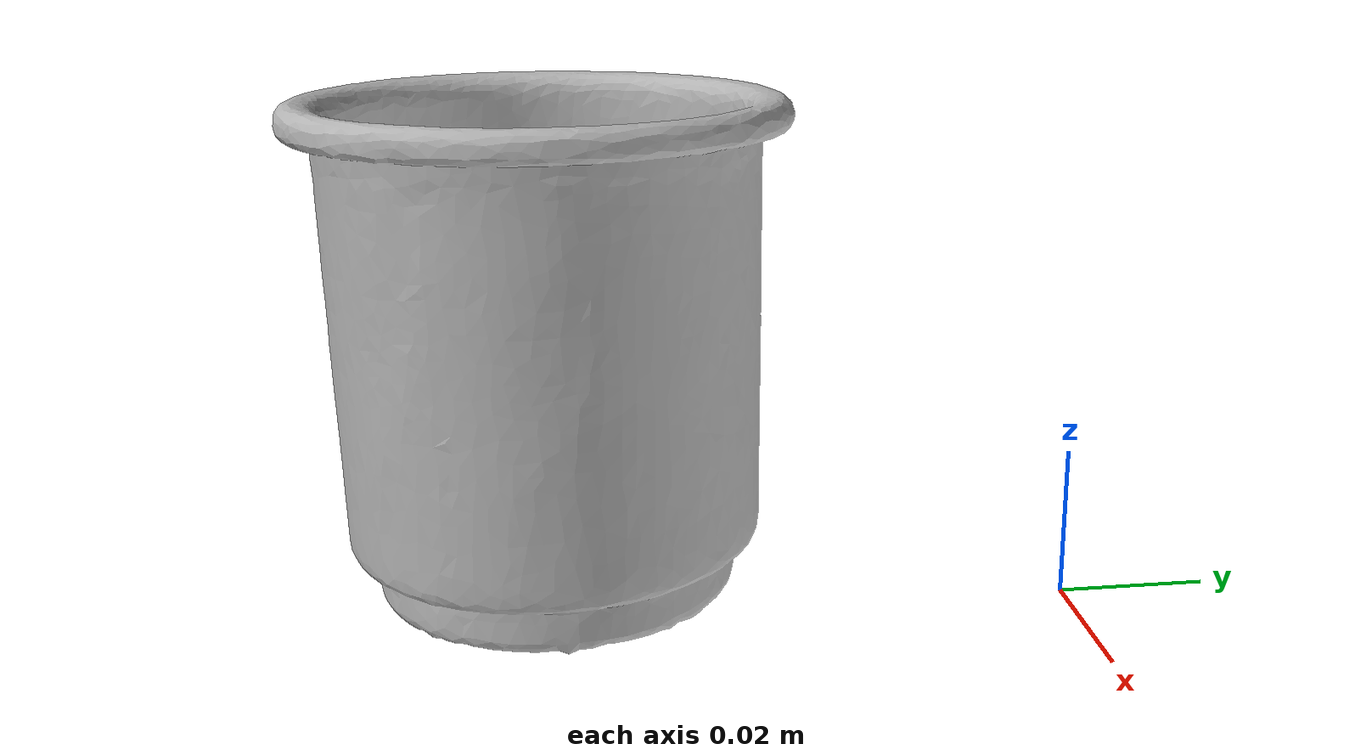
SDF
<?xml version='1.0'?>
<sdf version="1.4">
  <model name="c_cups">
    <static>false</static>
    <link name="link">
      <inertial>
        <pose>-0.01447497482279456 -0.06461685625471408 0.031162156357884618 0.44180425836506654 0.00023511074425008432 -0.10681404653866639</pose>
        <mass>2.833011304343816e-05</mass>
        <inertia>
          <ixx>2.084885089389599e-08</ixx>
          <ixy>3.6971306214109353e-25</ixy>
          <ixz>-7.971030540022132e-25</ixz>
          <iyy>2.0444340163285016e-08</iyy>
          <iyz>8.495504105733302e-25</iyz>
          <izz>1.8684373284877542e-08</izz>
        </inertia>
      </inertial>
      <collision name="collision">
        <geometry>
          <mesh>
            <!-- Use a downsampled mesh for collisions -->
            <uri>model://065-c_cups/google_16k/065-c_cups.obj</uri>
            </mesh>
        </geometry>
        <surface>
          <friction>
            <ode>
              <mu>0.9</mu>
              <mu2>0.9</mu2>
            </ode>
          </friction>
          <contact>
            <ode>
              <kp>1000000000000.0</kp>
              <kd>1</kd>
              <min_depth>0.0001</min_depth>
              <max_vel>0.01</max_vel>
            </ode>
          </contact>
          <bounce>
            <restitution_coefficient>0.1</restitution_coefficient>
            <threshold>1000.0</threshold>
          </bounce>
        </surface>
      </collision>
      <visual name="visual">
        <geometry>
          <mesh>
            <uri>model://065-c_cups/google_16k/065-c_cups.dae</uri>
            </mesh>
        </geometry>
      </visual>
    </link>
  </model>
</sdf>
